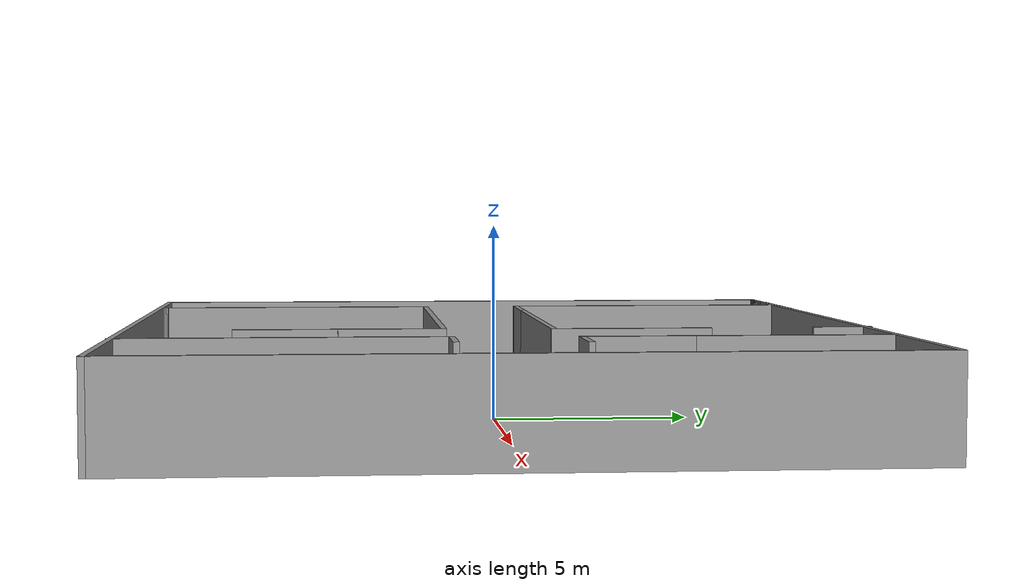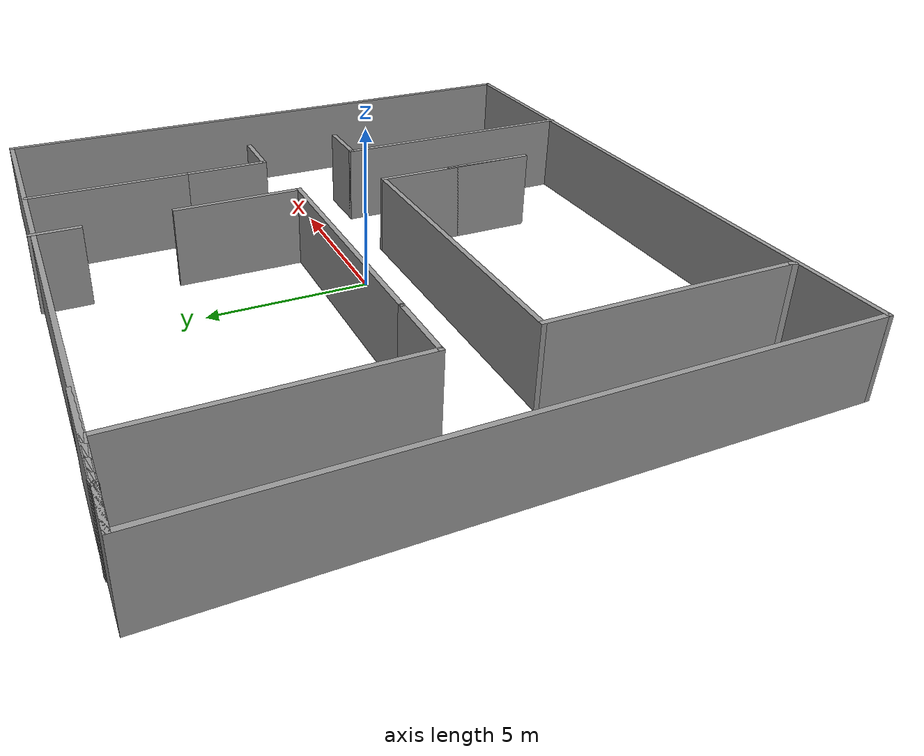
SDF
<?xml version='1.0'?>
<sdf version='1.7'>
  <model name='labroom'>
    <pose>-0.522275 0.009464 0 0 -0 0</pose>
    <link name='Wall_11'>
      <collision name='Wall_11_Collision'>
        <geometry>
          <box>
            <size>3 0.15 2.5</size>
          </box>
        </geometry>
        <pose>0 0 1.25 0 -0 0</pose>
      </collision>
      <visual name='Wall_11_Visual'>
        <pose>0 0 1.25 0 -0 0</pose>
        <geometry>
          <box>
            <size>3 0.15 2.5</size>
          </box>
        </geometry>
        <material>
          <script>
            <uri>file://media/materials/scripts/gazebo.material</uri>
            <name>Gazebo/Grey</name>
          </script>
          <ambient>1 1 1 1</ambient>
        </material>
        <meta>
          <layer>0</layer>
        </meta>
      </visual>
      <pose>-8.375 9.14288 0 0 -0 0</pose>
    </link>
    <link name='Wall_12'>
      <collision name='Wall_12_Collision'>
        <geometry>
          <box>
            <size>8 0.15 2.5</size>
          </box>
        </geometry>
        <pose>0 0 1.25 0 -0 0</pose>
      </collision>
      <visual name='Wall_12_Visual'>
        <pose>0 0 1.25 0 -0 0</pose>
        <geometry>
          <box>
            <size>8 0.15 2.5</size>
          </box>
        </geometry>
        <material>
          <script>
            <uri>file://media/materials/scripts/gazebo.material</uri>
            <name>Gazebo/Grey</name>
          </script>
          <ambient>1 1 1 1</ambient>
        </material>
        <meta>
          <layer>0</layer>
        </meta>
      </visual>
      <pose>-6.95 5.21788 0 0 -0 -1.5708</pose>
    </link>
    <link name='Wall_13'>
      <collision name='Wall_13_Collision'>
        <geometry>
          <box>
            <size>2.25 0.15 2.5</size>
          </box>
        </geometry>
        <pose>0 0 1.25 0 -0 0</pose>
      </collision>
      <visual name='Wall_13_Visual'>
        <pose>0 0 1.25 0 -0 0</pose>
        <geometry>
          <box>
            <size>2.25 0.15 2.5</size>
          </box>
        </geometry>
        <material>
          <script>
            <uri>file://media/materials/scripts/gazebo.material</uri>
            <name>Gazebo/Grey</name>
          </script>
          <ambient>1 1 1 1</ambient>
        </material>
        <meta>
          <layer>0</layer>
        </meta>
      </visual>
      <pose>-5.9 1.29288 0 0 -0 0</pose>
    </link>
    <link name='Wall_14'>
      <collision name='Wall_14_Collision'>
        <geometry>
          <box>
            <size>7.75 0.15 2.5</size>
          </box>
        </geometry>
        <pose>0 0 1.25 0 -0 0</pose>
      </collision>
      <visual name='Wall_14_Visual'>
        <pose>0 0 1.25 0 -0 0</pose>
        <geometry>
          <box>
            <size>7.75 0.15 2.5</size>
          </box>
        </geometry>
        <material>
          <script>
            <uri>file://media/materials/scripts/gazebo.material</uri>
            <name>Gazebo/Grey</name>
          </script>
          <ambient>1 1 1 1</ambient>
        </material>
        <meta>
          <layer>0</layer>
        </meta>
      </visual>
      <pose>-1.05 1.29288 0 0 -0 0</pose>
    </link>
    <link name='Wall_15'>
      <collision name='Wall_15_Collision'>
        <geometry>
          <box>
            <size>4 0.15 2.5</size>
          </box>
        </geometry>
        <pose>0 0 1.25 0 -0 0</pose>
      </collision>
      <visual name='Wall_15_Visual'>
        <pose>0 0 1.25 0 -0 0</pose>
        <geometry>
          <box>
            <size>4 0.15 2.5</size>
          </box>
        </geometry>
        <material>
          <script>
            <uri>file://media/materials/scripts/gazebo.material</uri>
            <name>Gazebo/Grey</name>
          </script>
          <ambient>1 1 1 1</ambient>
        </material>
        <meta>
          <layer>0</layer>
        </meta>
      </visual>
      <pose>2.75 3.21788 0 0 -0 1.5708</pose>
    </link>
    <link name='Wall_17'>
      <collision name='Wall_17_Collision'>
        <geometry>
          <box>
            <size>1.5 0.15 2.5</size>
          </box>
        </geometry>
        <pose>0 0 1.25 0 -0 0</pose>
      </collision>
      <visual name='Wall_17_Visual'>
        <pose>0 0 1.25 0 -0 0</pose>
        <geometry>
          <box>
            <size>1.5 0.15 2.5</size>
          </box>
        </geometry>
        <material>
          <script>
            <uri>file://media/materials/scripts/gazebo.material</uri>
            <name>Gazebo/Grey</name>
          </script>
          <ambient>1 1 1 1</ambient>
        </material>
        <meta>
          <layer>0</layer>
        </meta>
      </visual>
      <pose>2.66692 8.55975 0 0 -0 -1.5708</pose>
    </link>
    <link name='Wall_19'>
      <collision name='Wall_19_Collision'>
        <geometry>
          <box>
            <size>5.25 0.15 2.5</size>
          </box>
        </geometry>
        <pose>0 0 1.25 0 -0 0</pose>
      </collision>
      <visual name='Wall_19_Visual'>
        <pose>0 0 1.25 0 -0 0</pose>
        <geometry>
          <box>
            <size>5.25 0.15 2.5</size>
          </box>
        </geometry>
        <material>
          <script>
            <uri>file://media/materials/scripts/gazebo.material</uri>
            <name>Gazebo/Grey</name>
          </script>
          <ambient>1 1 1 1</ambient>
        </material>
        <meta>
          <layer>0</layer>
        </meta>
      </visual>
      <pose>2.47453 -3.96669 0 0 -0 -1.5708</pose>
    </link>
    <link name='Wall_20'>
      <collision name='Wall_20_Collision'>
        <geometry>
          <box>
            <size>5.25 0.15 2.5</size>
          </box>
        </geometry>
        <pose>0 0 1.25 0 -0 0</pose>
      </collision>
      <visual name='Wall_20_Visual'>
        <pose>0 0 1.25 0 -0 0</pose>
        <geometry>
          <box>
            <size>5.25 0.15 2.5</size>
          </box>
        </geometry>
        <material>
          <script>
            <uri>file://media/materials/scripts/gazebo.material</uri>
            <name>Gazebo/Grey</name>
          </script>
          <ambient>1 1 1 1</ambient>
        </material>
        <meta>
          <layer>0</layer>
        </meta>
      </visual>
      <pose>2.47453 -3.96669 0 0 -0 1.5708</pose>
    </link>
    <link name='Wall_21'>
      <collision name='Wall_21_Collision'>
        <geometry>
          <box>
            <size>9.5 0.15 2.5</size>
          </box>
        </geometry>
        <pose>0 0 1.25 0 -0 0</pose>
      </collision>
      <visual name='Wall_21_Visual'>
        <pose>0 0 1.25 0 -0 0</pose>
        <geometry>
          <box>
            <size>9.5 0.15 2.5</size>
          </box>
        </geometry>
        <material>
          <script>
            <uri>file://media/materials/scripts/gazebo.material</uri>
            <name>Gazebo/Grey</name>
          </script>
          <ambient>1 1 1 1</ambient>
        </material>
        <meta>
          <layer>0</layer>
        </meta>
      </visual>
      <pose>-2.20047 -1.41669 0 0 -0 3.14159</pose>
    </link>
    <link name='Wall_22'>
      <collision name='Wall_22_Collision'>
        <geometry>
          <box>
            <size>7.75 0.15 2.5</size>
          </box>
        </geometry>
        <pose>0 0 1.25 0 -0 0</pose>
      </collision>
      <visual name='Wall_22_Visual'>
        <pose>0 0 1.25 0 -0 0</pose>
        <geometry>
          <box>
            <size>7.75 0.15 2.5</size>
          </box>
        </geometry>
        <material>
          <script>
            <uri>file://media/materials/scripts/gazebo.material</uri>
            <name>Gazebo/Grey</name>
          </script>
          <ambient>1 1 1 1</ambient>
        </material>
        <meta>
          <layer>0</layer>
        </meta>
      </visual>
      <pose>-6.87547 -5.21669 0 0 -0 -1.5708</pose>
    </link>
    <link name='Wall_23'>
      <collision name='Wall_23_Collision'>
        <geometry>
          <box>
            <size>0.25 0.15 2.5</size>
          </box>
        </geometry>
        <pose>0 0 1.25 0 -0 0</pose>
      </collision>
      <visual name='Wall_23_Visual'>
        <pose>0 0 1.25 0 -0 0</pose>
        <geometry>
          <box>
            <size>0.25 0.15 2.5</size>
          </box>
        </geometry>
        <material>
          <script>
            <uri>file://media/materials/scripts/gazebo.material</uri>
            <name>Gazebo/Grey</name>
          </script>
          <ambient>1 1 1 1</ambient>
        </material>
        <meta>
          <layer>0</layer>
        </meta>
      </visual>
      <pose>-6.90047 -9.06 0 0 -0 -2.0944</pose>
    </link>
    <link name='Wall_25'>
      <collision name='Wall_25_Collision'>
        <geometry>
          <box>
            <size>5 0.15 2.5</size>
          </box>
        </geometry>
        <pose>0 0 1.25 0 -0 0</pose>
      </collision>
      <visual name='Wall_25_Visual'>
        <pose>0 0 1.25 0 -0 0</pose>
        <geometry>
          <box>
            <size>5 0.15 2.5</size>
          </box>
        </geometry>
        <material>
          <script>
            <uri>file://media/materials/scripts/gazebo.material</uri>
            <name>Gazebo/Grey</name>
          </script>
          <ambient>1 1 1 1</ambient>
        </material>
        <meta>
          <layer>0</layer>
        </meta>
      </visual>
      <pose>5.30792 6.66983 0 0 -0 -1.5708</pose>
    </link>
    <link name='Wall_26'>
      <collision name='Wall_26_Collision'>
        <geometry>
          <box>
            <size>2.75 0.15 2.5</size>
          </box>
        </geometry>
        <pose>0 0 1.25 0 -0 0</pose>
      </collision>
      <visual name='Wall_26_Visual'>
        <pose>0 0 1.25 0 -0 0</pose>
        <geometry>
          <box>
            <size>2.75 0.15 2.5</size>
          </box>
        </geometry>
        <material>
          <script>
            <uri>file://media/materials/scripts/gazebo.material</uri>
            <name>Gazebo/Grey</name>
          </script>
          <ambient>1 1 1 1</ambient>
        </material>
        <meta>
          <layer>0</layer>
        </meta>
      </visual>
      <pose>5.30792 2.94483 0 0 -0 -1.5708</pose>
    </link>
    <link name='Wall_27'>
      <collision name='Wall_27_Collision'>
        <geometry>
          <box>
            <size>1.75 0.15 2.5</size>
          </box>
        </geometry>
        <pose>0 0 1.25 0 -0 0</pose>
      </collision>
      <visual name='Wall_27_Visual'>
        <pose>0 0 1.25 0 -0 0</pose>
        <geometry>
          <box>
            <size>1.75 0.15 2.5</size>
          </box>
        </geometry>
        <material>
          <script>
            <uri>file://media/materials/scripts/gazebo.material</uri>
            <name>Gazebo/Grey</name>
          </script>
          <ambient>1 1 1 1</ambient>
        </material>
        <meta>
          <layer>0</layer>
        </meta>
      </visual>
      <pose>6.10792 1.64483 0 0 -0 0</pose>
    </link>
    <link name='Wall_29'>
      <collision name='Wall_29_Collision'>
        <geometry>
          <box>
            <size>8 0.15 2.5</size>
          </box>
        </geometry>
        <pose>0 0 1.25 0 -0 0</pose>
      </collision>
      <visual name='Wall_29_Visual'>
        <pose>0 0 1.25 0 -0 0</pose>
        <geometry>
          <box>
            <size>8 0.15 2.5</size>
          </box>
        </geometry>
        <material>
          <script>
            <uri>file://media/materials/scripts/gazebo.material</uri>
            <name>Gazebo/Grey</name>
          </script>
          <ambient>1 1 1 1</ambient>
        </material>
        <meta>
          <layer>0</layer>
        </meta>
      </visual>
      <pose>5.09804 -5.30975 0 0 -0 1.5708</pose>
    </link>
    <link name='Wall_3'>
      <collision name='Wall_3_Collision'>
        <geometry>
          <box>
            <size>19.5 0.15 2.5</size>
          </box>
        </geometry>
        <pose>0 0 1.25 0 -0 0</pose>
      </collision>
      <visual name='Wall_3_Visual'>
        <pose>0 0 1.25 0 -0 0</pose>
        <geometry>
          <box>
            <size>19.5 0.15 2.5</size>
          </box>
        </geometry>
        <material>
          <script>
            <uri>file://media/materials/scripts/gazebo.material</uri>
            <name>Gazebo/Grey</name>
          </script>
          <ambient>1 1 1 1</ambient>
        </material>
        <meta>
          <layer>0</layer>
        </meta>
      </visual>
      <pose>0.125 9.14288 0 0 -0 0</pose>
    </link>
    <link name='Wall_30'>
      <collision name='Wall_30_Collision'>
        <geometry>
          <box>
            <size>1.75 0.15 2.5</size>
          </box>
        </geometry>
        <pose>0 0 1.25 0 -0 0</pose>
      </collision>
      <visual name='Wall_30_Visual'>
        <pose>0 0 1.25 0 -0 0</pose>
        <geometry>
          <box>
            <size>1.75 0.15 2.5</size>
          </box>
        </geometry>
        <material>
          <script>
            <uri>file://media/materials/scripts/gazebo.material</uri>
            <name>Gazebo/Grey</name>
          </script>
          <ambient>1 1 1 1</ambient>
        </material>
        <meta>
          <layer>0</layer>
        </meta>
      </visual>
      <pose>5.89804 -1.38475 0 0 -0 0</pose>
    </link>
    <link name='Wall_4'>
      <collision name='Wall_4_Collision'>
        <geometry>
          <box>
            <size>18.5 0.15 2.5</size>
          </box>
        </geometry>
        <pose>0 0 1.25 0 -0 0</pose>
      </collision>
      <visual name='Wall_4_Visual'>
        <pose>0 0 1.25 0 -0 0</pose>
        <geometry>
          <box>
            <size>18.5 0.15 2.5</size>
          </box>
        </geometry>
        <material>
          <script>
            <uri>file://media/materials/scripts/gazebo.material</uri>
            <name>Gazebo/Grey</name>
          </script>
          <ambient>1 1 1 1</ambient>
        </material>
        <meta>
          <layer>0</layer>
        </meta>
      </visual>
      <pose>9.8 -0.032124 0 0 -0 -1.5708</pose>
    </link>
    <link name='Wall_5'>
      <collision name='Wall_5_Collision'>
        <geometry>
          <box>
            <size>19.75 0.15 2.5</size>
          </box>
        </geometry>
        <pose>0 0 1.25 0 -0 0</pose>
      </collision>
      <visual name='Wall_5_Visual'>
        <pose>0 0 1.25 0 -0 0</pose>
        <geometry>
          <box>
            <size>19.75 0.15 2.5</size>
          </box>
        </geometry>
        <material>
          <script>
            <uri>file://media/materials/scripts/gazebo.material</uri>
            <name>Gazebo/Grey</name>
          </script>
          <ambient>1 1 1 1</ambient>
        </material>
        <meta>
          <layer>0</layer>
        </meta>
      </visual>
      <pose>0 -9.20712 0 0 -0 3.14159</pose>
    </link>
    <link name='Wall_6'>
      <collision name='Wall_6_Collision'>
        <geometry>
          <box>
            <size>18.5 0.15 2.5</size>
          </box>
        </geometry>
        <pose>0 0 1.25 0 -0 0</pose>
      </collision>
      <visual name='Wall_6_Visual'>
        <pose>0 0 1.25 0 -0 0</pose>
        <geometry>
          <box>
            <size>18.5 0.15 2.5</size>
          </box>
        </geometry>
        <material>
          <script>
            <uri>file://media/materials/scripts/gazebo.material</uri>
            <name>Gazebo/Grey</name>
          </script>
          <ambient>1 1 1 1</ambient>
        </material>
        <meta>
          <layer>0</layer>
        </meta>
      </visual>
      <pose>-9.8 -0.032124 0 0 -0 1.5708</pose>
    </link>
    <link name='Wall_7'>
      <collision name='Wall_7_Collision'>
        <geometry>
          <box>
            <size>1.5 0.15 2.5</size>
          </box>
        </geometry>
        <pose>0 0 1.25 0 -0 0</pose>
      </collision>
      <visual name='Wall_7_Visual'>
        <pose>0 0 1.25 0 -0 0</pose>
        <geometry>
          <box>
            <size>1.5 0.15 2.5</size>
          </box>
        </geometry>
        <material>
          <script>
            <uri>file://media/materials/scripts/gazebo.material</uri>
            <name>Gazebo/Grey</name>
          </script>
          <ambient>1 1 1 1</ambient>
        </material>
        <meta>
          <layer>0</layer>
        </meta>
      </visual>
      <pose>-9.125 9.14288 0 0 -0 0</pose>
    </link>
    <link name='Wall_8'>
      <collision name='Wall_8_Collision'>
        <geometry>
          <box>
            <size>0.25 0.15 2.5</size>
          </box>
        </geometry>
        <pose>0 0 1.25 0 -0 0</pose>
      </collision>
      <visual name='Wall_8_Visual'>
        <pose>0 0 1.25 0 -0 0</pose>
        <geometry>
          <box>
            <size>0.25 0.15 2.5</size>
          </box>
        </geometry>
        <material>
          <script>
            <uri>file://media/materials/scripts/gazebo.material</uri>
            <name>Gazebo/Grey</name>
          </script>
          <ambient>1 1 1 1</ambient>
        </material>
        <meta>
          <layer>0</layer>
        </meta>
      </visual>
      <pose>-8.4017 9.15582 0 0 -0 0.261799</pose>
    </link>
    <link name='Wall_9'>
      <collision name='Wall_9_Collision'>
        <geometry>
          <box>
            <size>3.25 0.15 2.5</size>
          </box>
        </geometry>
        <pose>0 0 1.25 0 -0 0</pose>
      </collision>
      <visual name='Wall_9_Visual'>
        <pose>0 0 1.25 0 -0 0</pose>
        <geometry>
          <box>
            <size>3.25 0.15 2.5</size>
          </box>
        </geometry>
        <material>
          <script>
            <uri>file://media/materials/scripts/gazebo.material</uri>
            <name>Gazebo/Grey</name>
          </script>
          <ambient>1 1 1 1</ambient>
        </material>
        <meta>
          <layer>0</layer>
        </meta>
      </visual>
      <pose>-6.80341 9.16876 0 0 -0 0</pose>
    </link>
    <link name='Window_0'>
      <collision name='Window_0_Collision'>
        <geometry>
          <box>
            <size>0.8 0.17 0.8</size>
          </box>
        </geometry>
        <pose>0 0 0.4 0 -0 0</pose>
      </collision>
      <visual name='Window_0_Visual'>
        <pose>0 0 0.4 0 -0 0</pose>
        <geometry>
          <box>
            <size>0.8 0.17 0.8</size>
          </box>
        </geometry>
        <material>
          <script>
            <uri>file://media/materials/scripts/gazebo.material</uri>
            <name>Gazebo/Grey</name>
          </script>
        </material>
      </visual>
      <pose>-8.93 9.11288 0.5 0 -0 0</pose>
    </link>
    <static>1</static>
  </model>
</sdf>
